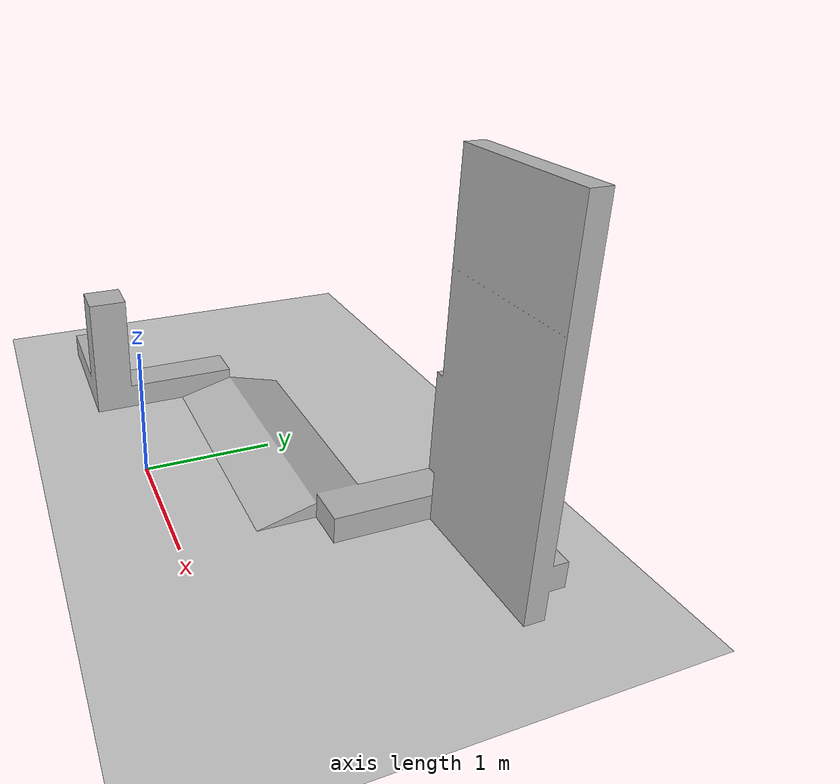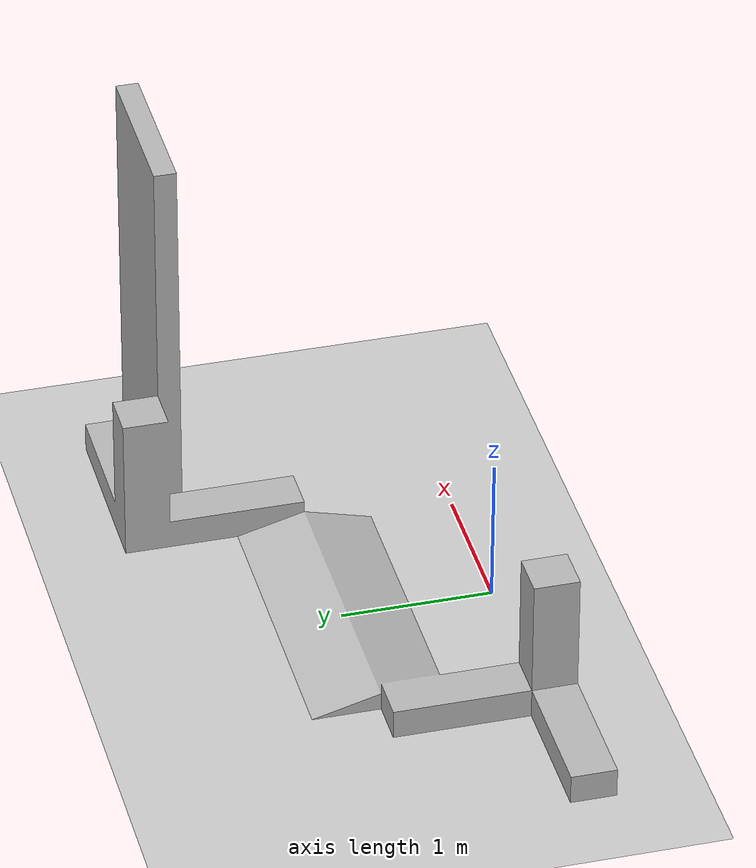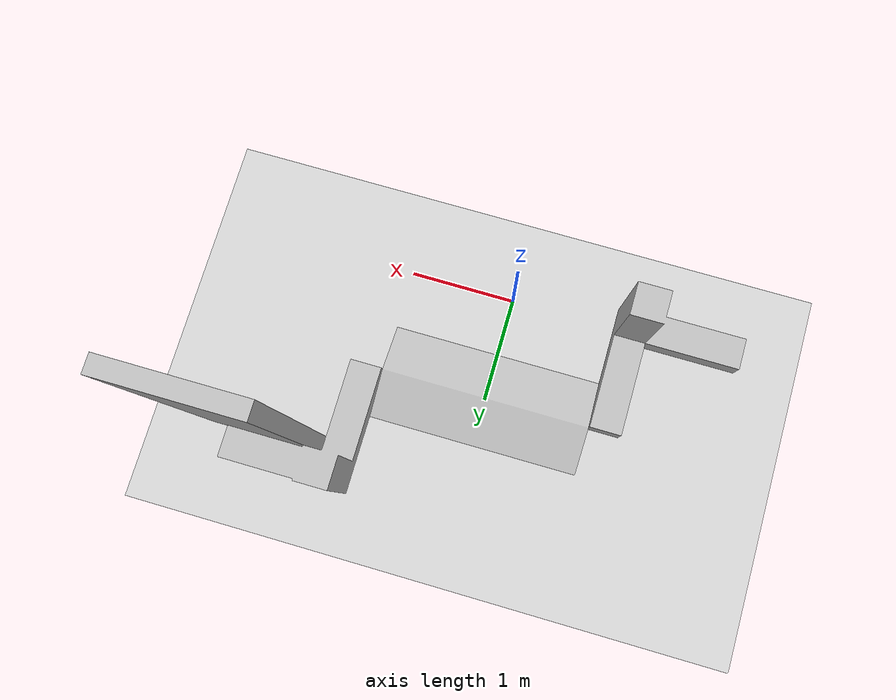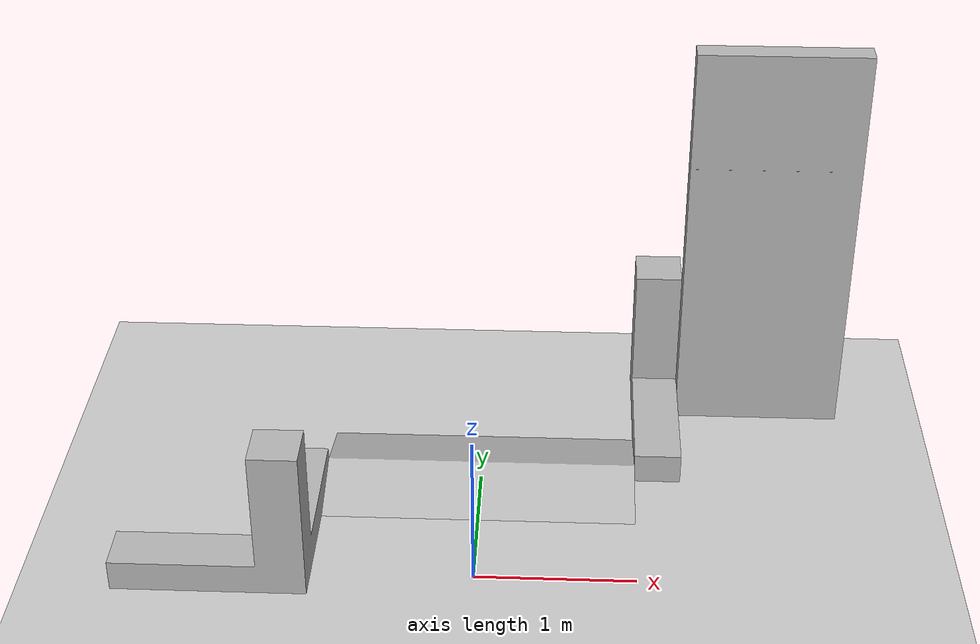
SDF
<?xml version="1.0" ?>
<sdf version="1.5">
  <world name="default">
   <scene>
      <sky>
        <clouds>
          <speed>5</speed>
        </clouds>
      </sky>
    </scene>
    <include>
      <uri>model://sun</uri>
    </include>
    <include>
      <uri>model://ground_plane</uri>
    </include>
    <include>
      <uri>model://room1</uri>
      <pose>0 1 0 0 0 0</pose>
    </include>
    <physics type="ode">
      <max_step_size>0.002</max_step_size>
      <real_time_factor>1</real_time_factor>
      <real_time_update_rate>0</real_time_update_rate>
      <ode>
        <solver>
          <type>quick</type>
          <iters>150</iters>
          <sor>0.6</sor>
        </solver>
        <constraints>
          <cfm>0</cfm>
          <erp>0.1</erp>
          <contact_max_correcting_vel>100.0</contact_max_correcting_vel>
          <contact_surface_layer>0.001</contact_surface_layer>
        </constraints>
      </ode>
    </physics>
  </world>
</sdf>

<!-- http://sdformat.org/spec?elem=physics -->
<!-- https://cloud.tencent.com/developer/article/1386839 -->

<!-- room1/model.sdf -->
<sdf version="1.4">
<model name="room1">
  <static>true</static>
  <pose>0 0 0 0 0 0</pose>
    <link name="link">
      <inertial>
        <mass>1.0</mass>
        <inertia>
          <ixx>0.083</ixx>
          <ixy>0.0</ixy>
          <ixz>0.0</ixz>
          <iyy>0.083</iyy>
          <iyz>0.0</iyz>
          <izz>0.083</izz>
        </inertia>
      </inertial>
      <collision name="collision">
        <geometry>
          <mesh>
            <uri>model://room1/asm_field.stl</uri>
          </mesh>
        </geometry>
      </collision>
      <visual name="visual">
        <geometry>
          <mesh>
            <uri>model://room1/asm_field.stl</uri>
          </mesh>
        </geometry>
      </visual>
    </link>
  </model>
</sdf>
